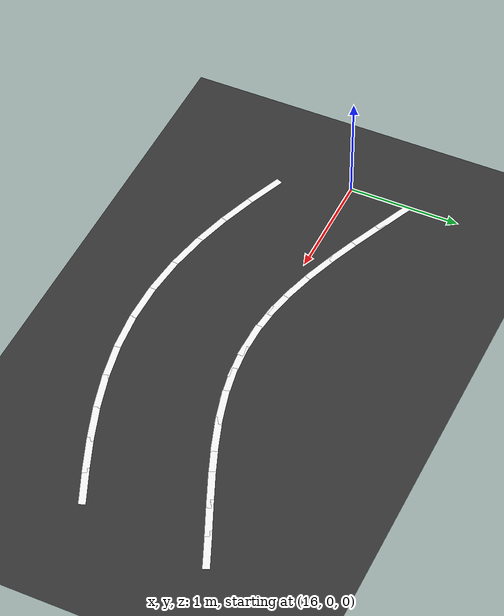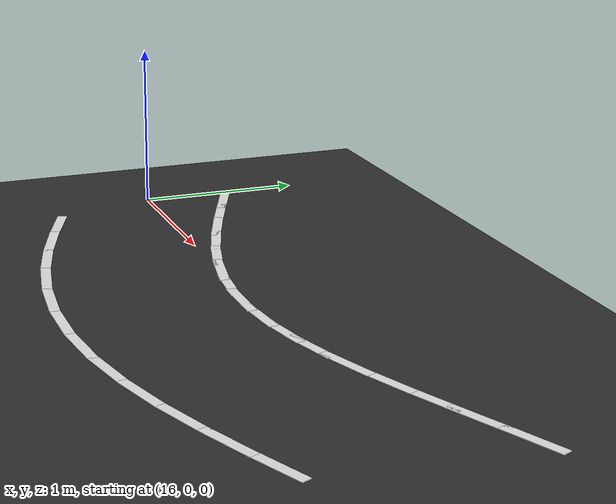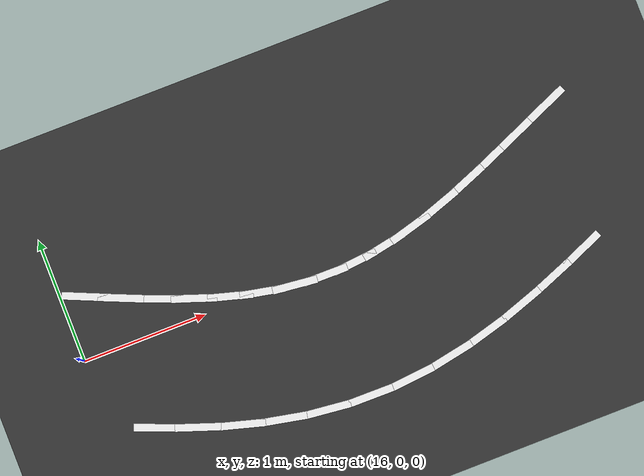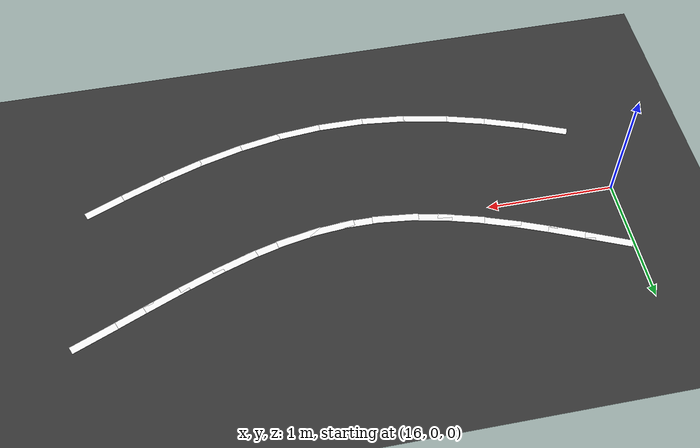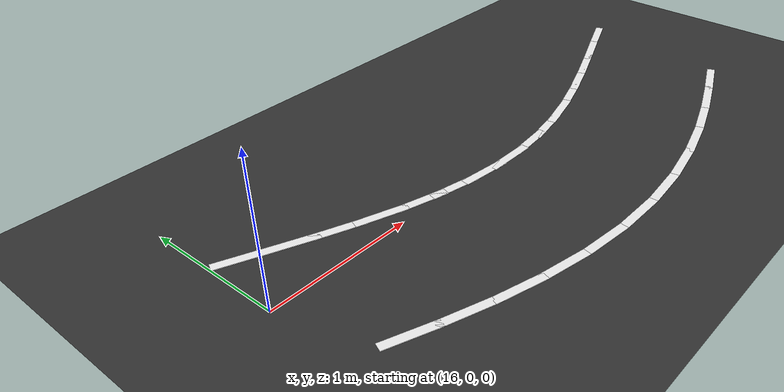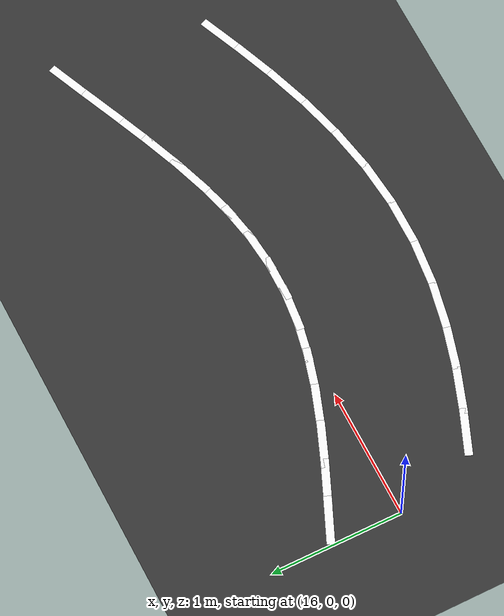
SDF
<sdf version="1.7">
 <world name="cone_lane">
  <model name="ground_plane">
   <static>true</static>
   <link name="link">
    <collision name="collision">
     <geometry><plane><normal>0 0 1</normal><size>150 150</size></plane></geometry>
     <surface><friction><ode><mu>1.0</mu></ode></friction></surface>
    </collision>
    <visual name="visual">
     <geometry><plane><normal>0 0 1</normal><size>100 100</size></plane></geometry>
     <material>
      <ambient>0.16 0.16 0.16 1</ambient>
      <diffuse>0.20 0.20 0.20 1</diffuse>
      <specular>0.02 0.02 0.02 1</specular>
     </material>
    </visual>
   </link>
  </model>
  <model name="line_L056">
   <static>true</static>
   <pose>16.178 0.468 0.0030 0 0 -0.4077</pose>
   <link name="link">
    <visual name="v">
     <geometry><box><size>0.360 0.060 0.005</size></box></geometry>
     <material>
      <ambient>0.85 0.85 0.85 1</ambient>
      <diffuse>0.95 0.95 0.95 1</diffuse>
      <specular>0.1 0.1 0.1 1</specular>
     </material>
    </visual>
   </link>
  </model>
  <model name="line_L057">
   <static>true</static>
   <pose>16.435 0.357 0.0030 0 0 -0.4013</pose>
   <link name="link">
    <visual name="v">
     <geometry><box><size>0.360 0.060 0.005</size></box></geometry>
     <material>
      <ambient>0.85 0.85 0.85 1</ambient>
      <diffuse>0.95 0.95 0.95 1</diffuse>
      <specular>0.1 0.1 0.1 1</specular>
     </material>
    </visual>
   </link>
  </model>
  <model name="line_L058">
   <static>true</static>
   <pose>16.704 0.246 0.0030 0 0 -0.3774</pose>
   <link name="link">
    <visual name="v">
     <geometry><box><size>0.360 0.060 0.005</size></box></geometry>
     <material>
      <ambient>0.85 0.85 0.85 1</ambient>
      <diffuse>0.95 0.95 0.95 1</diffuse>
      <specular>0.1 0.1 0.1 1</specular>
     </material>
    </visual>
   </link>
  </model>
  <model name="line_L059">
   <static>true</static>
   <pose>16.965 0.149 0.0030 0 0 -0.3362</pose>
   <link name="link">
    <visual name="v">
     <geometry><box><size>0.360 0.060 0.005</size></box></geometry>
     <material>
      <ambient>0.85 0.85 0.85 1</ambient>
      <diffuse>0.95 0.95 0.95 1</diffuse>
      <specular>0.1 0.1 0.1 1</specular>
     </material>
    </visual>
   </link>
  </model>
  <model name="line_L060">
   <static>true</static>
   <pose>17.235 0.063 0.0030 0 0 -0.2735</pose>
   <link name="link">
    <visual name="v">
     <geometry><box><size>0.360 0.060 0.005</size></box></geometry>
     <material>
      <ambient>0.85 0.85 0.85 1</ambient>
      <diffuse>0.95 0.95 0.95 1</diffuse>
      <specular>0.1 0.1 0.1 1</specular>
     </material>
    </visual>
   </link>
  </model>
  <model name="line_L061">
   <static>true</static>
   <pose>17.479 0.004 0.0030 0 0 -0.1994</pose>
   <link name="link">
    <visual name="v">
     <geometry><box><size>0.360 0.060 0.005</size></box></geometry>
     <material>
      <ambient>0.85 0.85 0.85 1</ambient>
      <diffuse>0.95 0.95 0.95 1</diffuse>
      <specular>0.1 0.1 0.1 1</specular>
     </material>
    </visual>
   </link>
  </model>
  <model name="line_L062">
   <static>true</static>
   <pose>17.733 -0.036 0.0030 0 0 -0.1070</pose>
   <link name="link">
    <visual name="v">
     <geometry><box><size>0.360 0.060 0.005</size></box></geometry>
     <material>
      <ambient>0.85 0.85 0.85 1</ambient>
      <diffuse>0.95 0.95 0.95 1</diffuse>
      <specular>0.1 0.1 0.1 1</specular>
     </material>
    </visual>
   </link>
  </model>
  <model name="line_L063">
   <static>true</static>
   <pose>17.983 -0.050 0.0030 0 0 -0.0068</pose>
   <link name="link">
    <visual name="v">
     <geometry><box><size>0.360 0.060 0.005</size></box></geometry>
     <material>
      <ambient>0.85 0.85 0.85 1</ambient>
      <diffuse>0.95 0.95 0.95 1</diffuse>
      <specular>0.1 0.1 0.1 1</specular>
     </material>
    </visual>
   </link>
  </model>
  <model name="line_L064">
   <static>true</static>
   <pose>18.233 -0.039 0.0030 0 0 0.0939</pose>
   <link name="link">
    <visual name="v">
     <geometry><box><size>0.360 0.060 0.005</size></box></geometry>
     <material>
      <ambient>0.85 0.85 0.85 1</ambient>
      <diffuse>0.95 0.95 0.95 1</diffuse>
      <specular>0.1 0.1 0.1 1</specular>
     </material>
    </visual>
   </link>
  </model>
  <model name="line_L065">
   <static>true</static>
   <pose>18.487 -0.003 0.0030 0 0 0.1878</pose>
   <link name="link">
    <visual name="v">
     <geometry><box><size>0.360 0.060 0.005</size></box></geometry>
     <material>
      <ambient>0.85 0.85 0.85 1</ambient>
      <diffuse>0.95 0.95 0.95 1</diffuse>
      <specular>0.1 0.1 0.1 1</specular>
     </material>
    </visual>
   </link>
  </model>
  <model name="line_L066">
   <static>true</static>
   <pose>18.730 0.053 0.0030 0 0 0.2638</pose>
   <link name="link">
    <visual name="v">
     <geometry><box><size>0.360 0.060 0.005</size></box></geometry>
     <material>
      <ambient>0.85 0.85 0.85 1</ambient>
      <diffuse>0.95 0.95 0.95 1</diffuse>
      <specular>0.1 0.1 0.1 1</specular>
     </material>
    </visual>
   </link>
  </model>
  <model name="line_L067">
   <static>true</static>
   <pose>18.998 0.136 0.0030 0 0 0.3289</pose>
   <link name="link">
    <visual name="v">
     <geometry><box><size>0.360 0.060 0.005</size></box></geometry>
     <material>
      <ambient>0.85 0.85 0.85 1</ambient>
      <diffuse>0.95 0.95 0.95 1</diffuse>
      <specular>0.1 0.1 0.1 1</specular>
     </material>
    </visual>
   </link>
  </model>
  <model name="line_L068">
   <static>true</static>
   <pose>19.258 0.232 0.0030 0 0 0.3726</pose>
   <link name="link">
    <visual name="v">
     <geometry><box><size>0.360 0.060 0.005</size></box></geometry>
     <material>
      <ambient>0.85 0.85 0.85 1</ambient>
      <diffuse>0.95 0.95 0.95 1</diffuse>
      <specular>0.1 0.1 0.1 1</specular>
     </material>
    </visual>
   </link>
  </model>
  <model name="line_L069">
   <static>true</static>
   <pose>19.526 0.341 0.0030 0 0 0.3989</pose>
   <link name="link">
    <visual name="v">
     <geometry><box><size>0.360 0.060 0.005</size></box></geometry>
     <material>
      <ambient>0.85 0.85 0.85 1</ambient>
      <diffuse>0.95 0.95 0.95 1</diffuse>
      <specular>0.1 0.1 0.1 1</specular>
     </material>
    </visual>
   </link>
  </model>
  <model name="line_L070">
   <static>true</static>
   <pose>19.782 0.450 0.0030 0 0 0.4077</pose>
   <link name="link">
    <visual name="v">
     <geometry><box><size>0.360 0.060 0.005</size></box></geometry>
     <material>
      <ambient>0.85 0.85 0.85 1</ambient>
      <diffuse>0.95 0.95 0.95 1</diffuse>
      <specular>0.1 0.1 0.1 1</specular>
     </material>
    </visual>
   </link>
  </model>
  <model name="line_L071">
   <static>true</static>
   <pose>20.065 0.572 0.0030 0 0 0.4002</pose>
   <link name="link">
    <visual name="v">
     <geometry><box><size>0.360 0.060 0.005</size></box></geometry>
     <material>
      <ambient>0.85 0.85 0.85 1</ambient>
      <diffuse>0.95 0.95 0.95 1</diffuse>
      <specular>0.1 0.1 0.1 1</specular>
     </material>
    </visual>
   </link>
  </model>
  <model name="line_R058">
   <static>true</static>
   <pose>16.336 -0.683 0.0030 0 0 -0.3774</pose>
   <link name="link">
    <visual name="v">
     <geometry><box><size>0.360 0.060 0.005</size></box></geometry>
     <material>
      <ambient>0.85 0.85 0.85 1</ambient>
      <diffuse>0.95 0.95 0.95 1</diffuse>
      <specular>0.1 0.1 0.1 1</specular>
     </material>
    </visual>
   </link>
  </model>
  <model name="line_R059">
   <static>true</static>
   <pose>16.635 -0.795 0.0030 0 0 -0.3362</pose>
   <link name="link">
    <visual name="v">
     <geometry><box><size>0.360 0.060 0.005</size></box></geometry>
     <material>
      <ambient>0.85 0.85 0.85 1</ambient>
      <diffuse>0.95 0.95 0.95 1</diffuse>
      <specular>0.1 0.1 0.1 1</specular>
     </material>
    </visual>
   </link>
  </model>
  <model name="line_R060">
   <static>true</static>
   <pose>16.965 -0.900 0.0030 0 0 -0.2735</pose>
   <link name="link">
    <visual name="v">
     <geometry><box><size>0.360 0.060 0.005</size></box></geometry>
     <material>
      <ambient>0.85 0.85 0.85 1</ambient>
      <diffuse>0.95 0.95 0.95 1</diffuse>
      <specular>0.1 0.1 0.1 1</specular>
     </material>
    </visual>
   </link>
  </model>
  <model name="line_R061">
   <static>true</static>
   <pose>17.281 -0.976 0.0030 0 0 -0.1994</pose>
   <link name="link">
    <visual name="v">
     <geometry><box><size>0.360 0.060 0.005</size></box></geometry>
     <material>
      <ambient>0.85 0.85 0.85 1</ambient>
      <diffuse>0.95 0.95 0.95 1</diffuse>
      <specular>0.1 0.1 0.1 1</specular>
     </material>
    </visual>
   </link>
  </model>
  <model name="line_R062">
   <static>true</static>
   <pose>17.627 -1.030 0.0030 0 0 -0.1070</pose>
   <link name="link">
    <visual name="v">
     <geometry><box><size>0.360 0.060 0.005</size></box></geometry>
     <material>
      <ambient>0.85 0.85 0.85 1</ambient>
      <diffuse>0.95 0.95 0.95 1</diffuse>
      <specular>0.1 0.1 0.1 1</specular>
     </material>
    </visual>
   </link>
  </model>
  <model name="line_R063">
   <static>true</static>
   <pose>17.977 -1.050 0.0030 0 0 -0.0068</pose>
   <link name="link">
    <visual name="v">
     <geometry><box><size>0.360 0.060 0.005</size></box></geometry>
     <material>
      <ambient>0.85 0.85 0.85 1</ambient>
      <diffuse>0.95 0.95 0.95 1</diffuse>
      <specular>0.1 0.1 0.1 1</specular>
     </material>
    </visual>
   </link>
  </model>
  <model name="line_R064">
   <static>true</static>
   <pose>18.327 -1.035 0.0030 0 0 0.0939</pose>
   <link name="link">
    <visual name="v">
     <geometry><box><size>0.360 0.060 0.005</size></box></geometry>
     <material>
      <ambient>0.85 0.85 0.85 1</ambient>
      <diffuse>0.95 0.95 0.95 1</diffuse>
      <specular>0.1 0.1 0.1 1</specular>
     </material>
    </visual>
   </link>
  </model>
  <model name="line_R065">
   <static>true</static>
   <pose>18.673 -0.985 0.0030 0 0 0.1878</pose>
   <link name="link">
    <visual name="v">
     <geometry><box><size>0.360 0.060 0.005</size></box></geometry>
     <material>
      <ambient>0.85 0.85 0.85 1</ambient>
      <diffuse>0.95 0.95 0.95 1</diffuse>
      <specular>0.1 0.1 0.1 1</specular>
     </material>
    </visual>
   </link>
  </model>
  <model name="line_R066">
   <static>true</static>
   <pose>18.990 -0.912 0.0030 0 0 0.2638</pose>
   <link name="link">
    <visual name="v">
     <geometry><box><size>0.360 0.060 0.005</size></box></geometry>
     <material>
      <ambient>0.85 0.85 0.85 1</ambient>
      <diffuse>0.95 0.95 0.95 1</diffuse>
      <specular>0.1 0.1 0.1 1</specular>
     </material>
    </visual>
   </link>
  </model>
  <model name="line_R067">
   <static>true</static>
   <pose>19.322 -0.810 0.0030 0 0 0.3289</pose>
   <link name="link">
    <visual name="v">
     <geometry><box><size>0.360 0.060 0.005</size></box></geometry>
     <material>
      <ambient>0.85 0.85 0.85 1</ambient>
      <diffuse>0.95 0.95 0.95 1</diffuse>
      <specular>0.1 0.1 0.1 1</specular>
     </material>
    </visual>
   </link>
  </model>
  <model name="line_R068">
   <static>true</static>
   <pose>19.622 -0.700 0.0030 0 0 0.3726</pose>
   <link name="link">
    <visual name="v">
     <geometry><box><size>0.360 0.060 0.005</size></box></geometry>
     <material>
      <ambient>0.85 0.85 0.85 1</ambient>
      <diffuse>0.95 0.95 0.95 1</diffuse>
      <specular>0.1 0.1 0.1 1</specular>
     </material>
    </visual>
   </link>
  </model>
  <model name="line_R069">
   <static>true</static>
   <pose>19.914 -0.581 0.0030 0 0 0.3989</pose>
   <link name="link">
    <visual name="v">
     <geometry><box><size>0.360 0.060 0.005</size></box></geometry>
     <material>
      <ambient>0.85 0.85 0.85 1</ambient>
      <diffuse>0.95 0.95 0.95 1</diffuse>
      <specular>0.1 0.1 0.1 1</specular>
     </material>
    </visual>
   </link>
  </model>
 </world>
</sdf>
